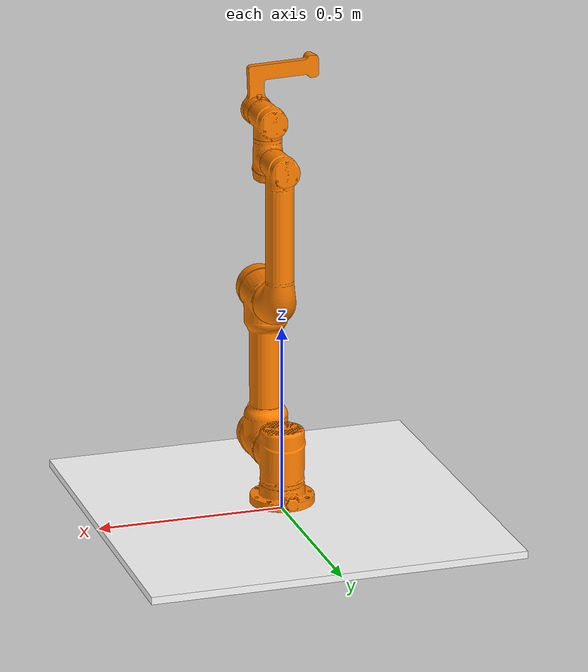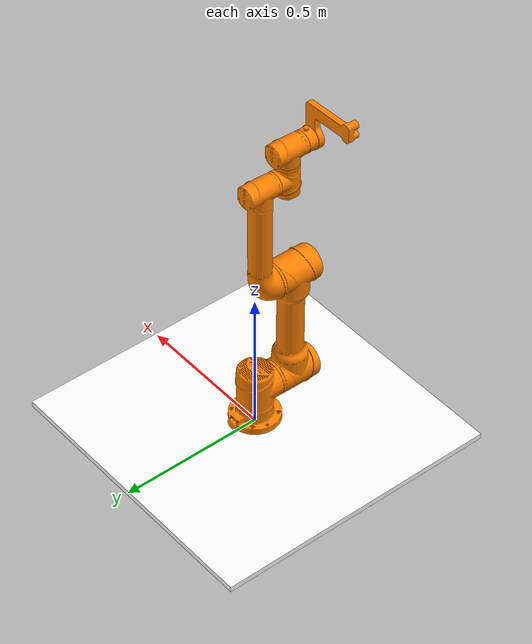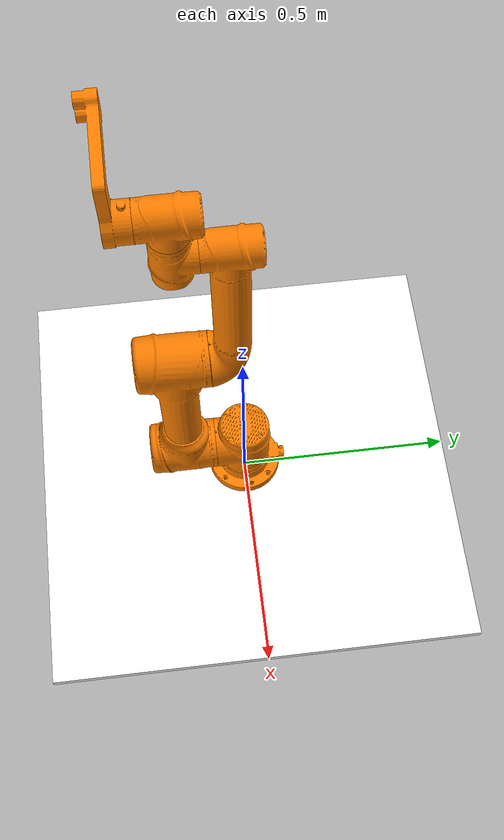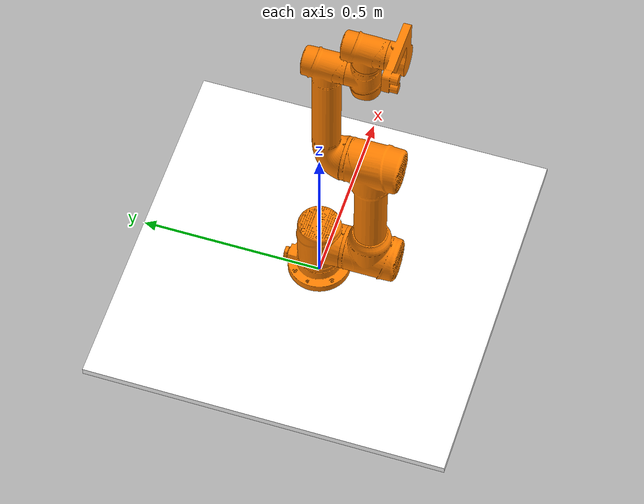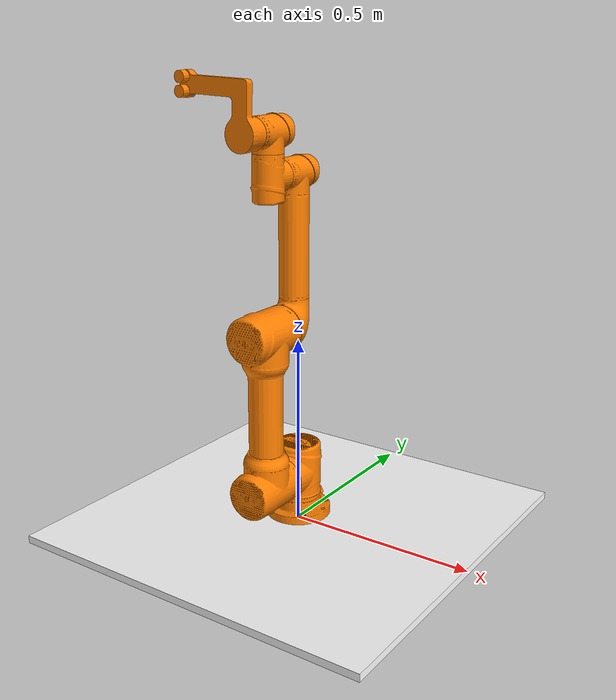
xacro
<?xml version="1.0" encoding="utf-8" ?>
<robot name="auboi5" xmlns:xacro="http://ros.org/wiki/xacro">
    <!-- 加了底座 -->
    <link name="world">
        <visual>
         <origin xyz="0 0 0" rpy="0 0 0"/>
         <geometry>
             <box size="1 1 0.02" />
         </geometry>
         <material name="">
            <color rgba="1 1 1 1" />
         </material>
        </visual>
        <collision>
            <origin xyz="0 0 0" rpy="0 0 0" />
            <geometry>
               <box size="1 1 0.02" />
            </geometry>
        </collision>
    </link>

    <joint name="world_joint" type="fixed">
        <origin xyz="0 0 0.02" rpy="0 0 0" />
        <parent link="world" />
        <child link="base_link" />
        <origin xyz="0.0 0.0 0.05" rpy="0.0 0.0 0.0" />
    </joint>

    <link name="base_link">
        <inertial>
        <origin xyz="-1.4795E-13 0.0015384 0.020951" rpy="0 0 0" />
        <mass value="0.83419" />
        <inertia ixx="0.0014414" ixy="7.8809E-15" ixz="8.5328E-16" iyy="0.0013542" iyz="-1.4364E-05" izz="0.0024659" />
        </inertial>
        <visual>
            <origin xyz="0 0 0" rpy="0 0 0" />
            <geometry>
                <mesh filename="package://auboi5/meshes/base_link.STL" />
            </geometry>
            <material name="">
                <color rgba="1 0.5 0 1" />
            </material>
        </visual>
        <collision>
            <origin xyz="0 0 0" rpy="0 0 0" />
            <geometry>
                <mesh filename="package://auboi5/meshes/base_link.STL" />
            </geometry>
        </collision>
    </link>

    <link name="jb_Link">
        <inertial>
        <origin xyz="3.2508868974735E-07 0.00534955349296065 -0.00883689325611056" rpy="0 0 0" />
        <mass value="1.57658348693929" />
        <inertia ixx="0.0040640448663128" ixy="0" ixz="0" iyy="0.00392863238466817" iyz="-0.000160151642851425" izz="0.0030869857349184" />
        </inertial>
        <visual>
            <origin xyz="0 0 0" rpy="0 0 0" />
            <geometry>
                <mesh filename="package://auboi5/meshes/jb_Link.STL" />
            </geometry>
            <material name="">
                <color rgba="1 0.5 0 1" />
            </material>
        </visual>
        <collision>
            <origin xyz="0 0 0" rpy="0 0 0" />
            <geometry>
                <mesh filename="package://auboi5/meshes/jb_Link.STL" />
            </geometry>
        </collision>
    </link>

    <joint name="jb_joint" type="revolute">
        <origin xyz="0 0 0.1215" rpy="0 0 0" />
        <parent link="base_link" />
        <child link="jb_Link" />
        <axis xyz="0 0 1" />
        <limit lower="-3.14" upper="3.14" effort="200" velocity="2.5" />
    </joint>

    <link name="b1_Link">
        <inertial>
        <origin xyz="0.203996646979614 2.01304585036544E-10 0.0127641545395984" rpy="0 0 0" />
        <mass value="4.04175782265494" />
        <inertia ixx="0.00965399211106204" ixy="0" ixz="0" iyy="0.144993869035655" iyz="0" izz="0.142607184038966" />
        </inertial>
        <visual>
            <origin xyz="0 0 0" rpy="0 0 0" />
            <geometry>
                <mesh filename="package://auboi5/meshes/b1_Link.STL" />
            </geometry>
            <material name="">
                <color rgba="1 0.5 0 1" />
            </material>
        </visual>
        <collision>
            <origin xyz="0 0 0" rpy="0 0 0" />
            <geometry>
                <mesh filename="package://auboi5/meshes/b1_Link.STL" />
            </geometry>
        </collision>
    </link>

    <joint name="b1_joint" type="revolute">
        <origin xyz="0 -0.1405 0" rpy="1.5708 0 0" />
        <parent link="jb_Link" />
        <child link="b1_Link" />
        <axis xyz="0 0 1" />
        <limit lower="-3.14" upper="3.14" effort="200" velocity="2.5" />

    </joint>

    <link name="b2_Link">
        <inertial>
        <origin xyz="0.188922115560337 6.78882434739072E-07 0.0981026740461557" rpy="0 0 0" />
        <mass  value="2.27145669098343" />
        <inertia ixx="0.00214322284946289" ixy="0" ixz="-0.00073120631553383" iyy="0.0443926090878205" iyz="0" izz="0.0441273797128365" />
        </inertial>
        <visual>
            <origin xyz="0 0 0" rpy="0 0 0" />
            <geometry>
                <mesh filename="package://auboi5/meshes/b2_Link.STL" />
            </geometry>
            <material name="">
                <color rgba="1 0.5 0 1" />
            </material>
        </visual>
        <collision>
            <origin xyz="0 0 0" rpy="0 0 0" />
            <geometry>
                <mesh filename="package://auboi5/meshes/b2_Link.STL" />
            </geometry>
        </collision>
    </link>

    <joint name="b2_joint" type="revolute">
        <origin xyz="0 0.408 -0.1215" rpy="3.1416 0 0" />
        <parent link="b1_Link" />
        <child link="b2_Link" />
        <axis xyz="0 0 1" />
        <limit lower="-3.14" upper="3.14" effort="200" velocity="2.5" />

    </joint>

    <link name="wrist1_Link">
        <inertial>
        <origin xyz="7.54205137428592E-07 0.0062481254331257 -0.00392367464072373" rpy="0 0 0" />
        <mass value="0.500477539188764" />
        <inertia ixx="0.00071194605962081" ixy="0" ixz="0" iyy="0.00040588242872958" iyz="-2.30808694377512E-05" izz="0.000685574004861334" />
        </inertial>
        <visual>
            <origin xyz="0 0 0" rpy="0 0 0" />
            <geometry>
                <mesh filename="package://auboi5/meshes/wrist1_Link.STL" />
            </geometry>
            <material name="">
                <color rgba="1 0.5 0 1" />
            </material>
        </visual>
        <collision>
            <origin xyz="0 0 0" rpy="0 0 0" />
            <geometry>
                <mesh filename="package://auboi5/meshes/wrist1_Link.STL" />
            </geometry>
        </collision>
    </link>

    <joint name="wrist1_joint" type="revolute">
        <origin xyz="0 -0.376 -0.1025" rpy="0 0 0" />
        <parent link="b2_Link" />
        <child link="wrist1_Link" />
        <axis xyz="0 0 1" />
        <limit lower="-3.14" upper="3.14" effort="200" velocity="3.0" />

    </joint>

    <link name="wrist2_Link">
        <inertial>
        <origin xyz="-7.54207620578635E-07 -0.00624812542617262 -0.00392367464115684" rpy="0 0 0" />
        <mass value="0.500477539245988" />
        <inertia ixx="0.00071194605981829" ixy="0" ixz="0" iyy="0.000405882428755442" iyz="2.30808694515886E-05" izz="0.000685574005112107" />
        </inertial>
        <visual>
            <origin xyz="0 0 0" rpy="0 0 0" />
            <geometry>
                <mesh filename="package://auboi5/meshes/wrist2_Link.STL" />
            </geometry>
            <material name="">
                <color rgba="1 0.5 0 1" />
            </material>
        </visual>
        <collision>
            <origin xyz="0 0 0" rpy="0 0 0" />
            <geometry>
                <mesh filename="package://auboi5/meshes/wrist2_Link.STL" />
            </geometry>
        </collision>
    </link>

    <joint name="wrist2_joint" type="revolute">
        <origin xyz="0 -0.1025 0" rpy="-1.5708 0 0" />
        <parent link="wrist1_Link" />
        <child link="wrist2_Link" />
        <axis xyz="0 0 1" />
        <limit lower="-3.14" upper="3.14" effort="200" velocity="3.0" />

    </joint>

    <link name="wrist3_Link">
        <inertial>
        <origin xyz="3.92048778449938E-10 0.000175788057281467 -0.0213294490706684" rpy="0 0 0" />
        <mass value="0.158309554874285" />
        <inertia ixx="7.31376196034769E-05" ixy="0" ixz="0" iyy="7.19528188876563E-05" iyz="0" izz="0.000108772439051422" />
        </inertial>
        <visual>
            <origin xyz="0 0 0" rpy="0 0 0" />
            <geometry>
                <mesh filename="package://auboi5/meshes/wrist3_Link.STL" />
            </geometry>
            <material name="">
                <color rgba="1 0.5 0 1" />
            </material>
        </visual>
        <collision>
            <origin xyz="0 0 0" rpy="0 0 0" />
            <geometry>
                <box size="0.06 0.06 0.04"/>
            </geometry>
        </collision>
    </link>

    <joint name="wrist3_joint" type="revolute">
        <origin xyz="0 0.094 0.00047211" rpy="1.5708 0 0" />
        <parent link="wrist2_Link" />
        <child link="wrist3_Link" />
        <axis xyz="0 0 1" />
        <limit lower="-3.14" upper="3.14" effort="200" velocity="3.0" />

    </joint>

<link name="vacuum_gripper">
  <!-- Link frame now located at the bottom of the cylinder -->
  <visual>
    <!-- Move geometry up by half its length so the bottom aligns with the link frame -->
    <origin xyz="0 0 0.0051" rpy="0 0 0"/>
    <geometry>
      <cylinder radius="0.03" length="0.01"/>
    </geometry>
    <material name="">
      <color rgba="0 0 0 1"/>
    </material>
  </visual>

  <collision>
    <!-- Same shift for collision geometry -->
    <origin xyz="0 0 0.0051" rpy="0 0 0"/>
    <geometry>
      <cylinder radius="0.03" length="0.01"/>
    </geometry>
  </collision>

  <inertial>
    <!-- Mass and inertia remain the same, but center of mass now shifted upward by 0.005 -->
    <mass value="0.3"/>
    <origin xyz="0 0 0.0" rpy="0 0 0"/>
    <inertia
      ixx="7.0e-05"
      ixy="0.0"
      ixz="0.0"
      iyy="7.0e-05"
      iyz="0.0"
      izz="1.35e-04"/>
  </inertial>
</link>

    <!-- Passive compliant hinge for the cup -->
    <joint name="gripper_joint" type="revolute">
      <origin xyz="0 0 -0.01" rpy="0 0 0"/>
      <parent link="wrist3_Link"/>
      <child  link="vacuum_gripper"/>
      <axis xyz="0 1 0"/>
      <limit lower="-0.0" upper="0.0" effort="200" velocity="0.0"/>
      <dynamics damping="0.001" friction="1"/>
    </joint>

    <gazebo>
      <plugin name="gazebo_ros_vacuum_gripper_debugger" filename="libgazebo_ros_vacuum_gripper_debugger.so">
        <robotNamespace>/vacuum_gripper</robotNamespace>
        <bodyName>vacuum_gripper</bodyName>
        <topicName>grasping</topicName>
        <maxForce>1</maxForce>
        <maxDistance>0.5</maxDistance>
        <minDistance>0.01</minDistance>
      </plugin>
    </gazebo>

    <transmission name="trans_jb_joint">
        <type>transmission_interface/SimpleTransmission</type>
        <joint name="jb_joint">
            <hardwareInterface>hardware_interface/PositionJointInterface</hardwareInterface>
        </joint>
        <actuator name="jb_joint_motor">
            <hardwareInterface>hardware_interface/PositionJointInterface</hardwareInterface>
            <mechanicalReduction>1</mechanicalReduction>
        </actuator>
    </transmission>

    <transmission name="trans_b1_joint">
        <type>transmission_interface/SimpleTransmission</type>
        <joint name="b1_joint">
            <hardwareInterface>hardware_interface/PositionJointInterface</hardwareInterface>
        </joint>
        <actuator name="b1_joint_motor">
            <hardwareInterface>hardware_interface/PositionJointInterface</hardwareInterface>
            <mechanicalReduction>1</mechanicalReduction>
        </actuator>
    </transmission>

    <transmission name="trans_b2_joint">
        <type>transmission_interface/SimpleTransmission</type>
        <joint name="b2_joint">
            <hardwareInterface>hardware_interface/PositionJointInterface</hardwareInterface>
        </joint>
        <actuator name="b2_joint_motor">
            <hardwareInterface>hardware_interface/PositionJointInterface</hardwareInterface>
            <mechanicalReduction>1</mechanicalReduction>
        </actuator>
    </transmission>

    <transmission name="trans_wrist1_joint">
        <type>transmission_interface/SimpleTransmission</type>
        <joint name="wrist1_joint">
            <hardwareInterface>hardware_interface/PositionJointInterface</hardwareInterface>
        </joint>
        <actuator name="wrist1_joint_motor">
            <hardwareInterface>hardware_interface/PositionJointInterface</hardwareInterface>
            <mechanicalReduction>1</mechanicalReduction>
        </actuator>
    </transmission>

    <transmission name="trans_wrist2_joint">
        <type>transmission_interface/SimpleTransmission</type>
        <joint name="wrist2_joint">
            <hardwareInterface>hardware_interface/PositionJointInterface</hardwareInterface>
        </joint>
        <actuator name="wrist2_joint_motor">
            <hardwareInterface>hardware_interface/PositionJointInterface</hardwareInterface>
            <mechanicalReduction>1</mechanicalReduction>
        </actuator>
    </transmission>

    <transmission name="trans_wrist3_joint">
        <type>transmission_interface/SimpleTransmission</type>
        <joint name="wrist3_joint">
            <hardwareInterface>hardware_interface/PositionJointInterface</hardwareInterface>
        </joint>
        <actuator name="wrist3_joint_motor">
            <hardwareInterface>hardware_interface/PositionJointInterface</hardwareInterface>
            <mechanicalReduction>1</mechanicalReduction>
        </actuator>
    </transmission>

    <transmission name="trans_gripper_joint">
      <type>transmission_interface/SimpleTransmission</type>
      <joint name="gripper_joint">
        <hardwareInterface>hardware_interface/PositionJointInterface</hardwareInterface>
      </joint>
      <actuator name="gripper_joint_motor">
        <hardwareInterface>hardware_interface/PositionJointInterface</hardwareInterface>
        <mechanicalReduction>1</mechanicalReduction>
      </actuator>
    </transmission>

    <gazebo>
        <plugin name="gazebo_ros_control" filename="libgazebo_ros_control.so">
            <robotNamespace>/</robotNamespace>
        </plugin>
    </gazebo>
</robot>
